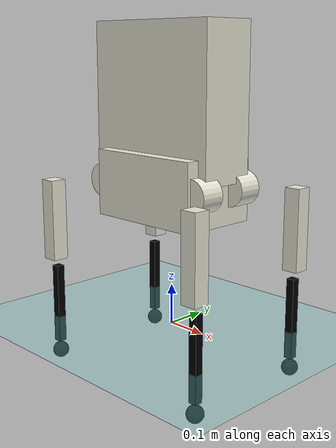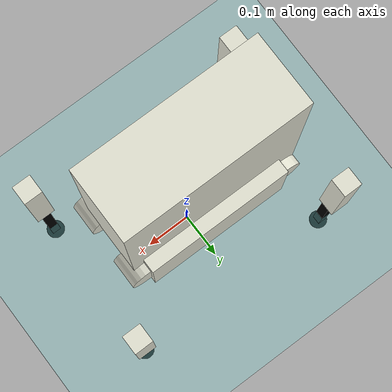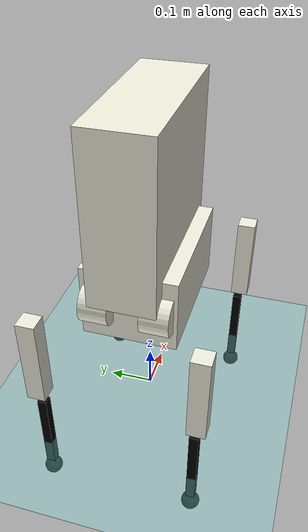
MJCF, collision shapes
<?xml version='1.0' encoding='utf-8'?>
<mujoco model="mybot_v3_with_arm">
    <compiler angle="radian" meshdir="../meshes/" autolimits="true" />
    <size njmax="500" nconmax="100" />
    <option gravity="0 0 -9.806" iterations="50" solver="Newton" timestep="0.002" />

    <default>
        <default class="dog_v2">
            <geom contype="1" conaffinity="1" friction="0.6 0.3 0.3" rgba="0.5 0.6 0.7 1" margin="0.001" group="0" />
            <joint armature="0.01" damping="2" frictionloss="0.2" />
            <motor ctrlrange="-33.5 33.5" ctrllimited="true" />

            <default class="abduction">
                <joint damping="1" />
            </default>
            <default class="thigh">
                <joint damping="2" />
            </default>
            <default class="calf">
                <joint damping="2" armature="0.0544" />
                <motor gear="2.3333" />
            </default>
        </default>

        <light castshadow="false" diffuse="1 1 1" />
        <camera fovy="60" />
    </default>

    <asset>
        <mesh name="body" file="body.STL" />
        <mesh name="FL_hip" file="FL_hip.STL" />
        <mesh name="FL_thigh" file="FL_thigh.STL" />
        <mesh name="FL_calf" file="FL_calf.STL" />
        <mesh name="FL_foot" file="FL_foot.STL" />
        <mesh name="FR_hip" file="FR_hip.STL" />
        <mesh name="FR_thigh" file="FR_thigh.STL" />
        <mesh name="FR_calf" file="FR_calf.STL" />
        <mesh name="FR_foot" file="FR_foot.STL" />
        <mesh name="RL_hip" file="RL_hip.STL" />
        <mesh name="RL_thigh" file="RL_thigh.STL" />
        <mesh name="RL_calf" file="RL_calf.STL" />
        <mesh name="RL_foot" file="RL_foot.STL" />
        <mesh name="RR_hip" file="RR_hip.STL" />
        <mesh name="RR_thigh" file="RR_thigh.STL" />
        <mesh name="RR_calf" file="RR_calf.STL" />
        <mesh name="RR_foot" file="RR_foot.STL" />
        <mesh name="arm_base_fix" file="arm_base_fix.STL" />

        <texture type="skybox" builtin="gradient" rgb1="1.0 1.0 1.0" rgb2="1.0 1.0 1.0" width="512" height="512" />
        <texture name="plane" type="2d" builtin="flat" rgb1="1 1 1" rgb2="1 1 1" width="512" height="512" mark="cross" markrgb="0 0 0" />
        <material name="plane" reflectance="0.0" texture="plane" texrepeat="3 3" texuniform="true" />
    </asset>

    <visual>
        <rgba com="0.502 1.0 0 0.5" contactforce="0.98 0.4 0.4 0.7" contactpoint="1.0 1.0 0.6 0.4" />
        <scale com="0.2" forcewidth="0.035" contactwidth="0.10" contactheight="0.04" />
    </visual>

    <worldbody>
        <light directional="true" diffuse=".8 .8 .8" pos="0 0 10" dir="0 0 -10" />
        <camera name="track" mode="trackcom" pos="0 -1.3 1.6" xyaxes="1 0 0 0 0.707 0.707" />
        <geom name="floor" type="plane" conaffinity="1" condim="3" contype="1" rgba="0.5 0.9 0.9 0.1" material="plane" pos="0 0 0" size="0 0 1" />

        <body name="body" pos="0 0 0.35" childclass="dog_v2">
            <inertial pos="0.00000000 0.00000000 0.00000000" mass="3.87237343" fullinertia="0.02571059 0.06723291 0.07677825 0.00000003 0.00005548 0.00000039" />
            <joint type="free" />
            <geom type="mesh" contype="0" conaffinity="0" group="1" rgba="0.847 0.847 0.847 1" mesh="body" />
            <geom size="0.15 0.1 0.08" pos="-0.0 0 -0.0" type="box" rgba="0.913 0.913 0.847 0" />
            <site name="imu" pos="0 0 0" />

            <body name="arm_base_fix" pos="0.060178 0.00017443 0.085879">
                <inertial pos="-0.06777427 0.00172378 0.11395569" mass="3.49951728" fullinertia="0.04270647 0.07424103 0.04229201 0.00109583 0.02637703 -0.00195862" />
                <geom type="mesh" contype="0" conaffinity="0" group="1" rgba="0.847 0.847 0.847 1" mesh="arm_base_fix" />
                <geom name="arm_base_fix_collision" size="0.18 0.07 0.18" pos="-0.0678 0.0017 0.1140" type="box" rgba="0.913 0.913 0.847 0" />
            </body>

            <body name="FL_hip" pos="0.15078 0.062035 0.0028793">
                <inertial pos="0.06912954 0.00308032 -0.00003864" mass="0.88715151" fullinertia="0.00069961 0.00185101 0.00156540 -0.00005524 0.00000161 -0.00000029" />
                <joint class="abduction" name="FL_hip_joint" pos="0 0 0" axis="1 0 0" range="-0.8 0.8" />
                <geom type="mesh" contype="0" conaffinity="0" group="1" rgba="1 1 1 1" mesh="FL_hip" />
                <geom size="0.04 0.03" euler="1.5707963 0 0" type="cylinder" rgba="0.913 0.913 0.847 0" />

                <body name="FL_thigh" pos="0.0889996956253644 0.0289500000000045 0">
                    <inertial pos="-0.02888348 0.05108903 -0.02037010" mass="1.44059854" fullinertia="0.00402900 0.00718366 0.00544974 0.00102313 -0.00259373 0.00071731" />
                    <joint class="thigh" name="FL_thigh_joint" pos="0 0 0" axis="0 1 0" range="-1.04 4.18" />
                    <geom type="mesh" contype="0" conaffinity="0" group="1" rgba="1 1 1 1" mesh="FL_thigh" />
                    <geom size="0.02 0.02 0.1" pos="0 0.08 -0.1" type="box" rgba="0.913 0.913 0.847 0" />

                    <body name="FL_calf" pos="0 0.075299999999995 -0.220000271728273">
                        <inertial pos="0.05156601 0.00018731 -0.04379412" mass="0.23708419" fullinertia="0.00070235 0.00207462 0.00144807 -0.00000272 0.00091520 0.00000190" />
                        <joint class="calf" name="FL_calf_joint" pos="0 0 0" axis="0 1 0" range="-2.69 -0.91" />
                        <geom type="mesh" contype="0" conaffinity="0" group="1" rgba="0.847 0.847 0.847 1" mesh="FL_calf" />
                        <geom size="0.01 0.01 0.1" pos="0 0 -0.1" type="box" rgba="0 0 0 0" />

                        <body name="FL_foot" pos="0 0.000400000000007244 -0.226044482407549">
                            <inertial pos="0.00000000 0.00000000 0.00000000" mass="0.03900000" fullinertia="0.00000624 0.00000624 0.00000624 0.00000000 0.00000000 0.00000000" />
                            <geom type="mesh" contype="0" conaffinity="0" group="1" rgba="0.298 0.298 0.298 1" mesh="FL_foot" />
                            <geom size="0.02" type="sphere" rgba="0 0 0 1" />
                        </body>
                    </body>
                </body>
            </body>

            <body name="FR_hip" pos="0.15078 -0.061965 0.0028793">
                <inertial pos="0.06924676 -0.00308032 -0.00003847" mass="0.88715151" fullinertia="0.00069961 0.00185513 0.00156952 0.00005408 -0.00000026 0.00000029" />
                <joint class="abduction" name="FR_hip_joint" pos="0 0 0" axis="1 0 0" range="-0.8 0.8" />
                <geom type="mesh" contype="0" conaffinity="0" group="1" rgba="1 1 1 1" mesh="FR_hip" />
                <geom size="0.04 0.03" euler="1.5707963 0 0" type="cylinder" rgba="0.913 0.913 0.847 0" />

                <body name="FR_thigh" pos="0.0889996956253649 -0.0289500000000027 0">
                    <inertial pos="-0.02893003 -0.05108904 -0.02031487" mass="1.44059854" fullinertia="0.00403040 0.00718302 0.00544770 -0.00102127 -0.00259435 -0.00071952" />
                    <joint class="thigh" name="FR_thigh_joint" pos="0 0 0" axis="0 1 0" range="-1.04 4.18" />
                    <geom type="mesh" contype="0" conaffinity="0" group="1" rgba="1 1 1 1" mesh="FR_thigh" />
                    <geom size="0.02 0.02 0.1" pos="0 -0.08 -0.1" type="box" rgba="0.913 0.913 0.847 0" />

                    <body name="FR_calf" pos="0 -0.0752999999999995 -0.220000271728275">
                        <inertial pos="0.05155465 -0.00019685 -0.04378873" mass="0.23708419" fullinertia="0.00070228 0.00207435 0.00144787 0.00000301 0.00091508 -0.00000213" />
                        <joint class="calf" name="FR_calf_joint" pos="0 0 0" axis="0 1 0" range="-2.69 -0.91" />
                        <geom type="mesh" contype="0" conaffinity="0" group="1" rgba="0.847 0.847 0.847 1" mesh="FR_calf" />
                        <geom size="0.01 0.01 0.1" pos="0 0 -0.1" type="box" rgba="0 0 0 0" />

                        <body name="FR_foot" pos="0 -0.000399999999994072 -0.226044482407548">
                            <inertial pos="0.00000000 0.00000000 0.00000000" mass="0.03900000" fullinertia="0.00000624 0.00000624 0.00000624 0.00000000 0.00000000 0.00000000" />
                            <geom type="mesh" contype="0" conaffinity="0" group="1" rgba="0.298 0.298 0.298 1" mesh="FR_foot" />
                            <geom size="0.02" type="sphere" rgba="0 0 0 1" />
                        </body>
                    </body>
                </body>
            </body>

            <body name="RL_hip" pos="-0.15042 0.062035 0.0028793">
                <inertial pos="-0.06912961 0.00308032 0.00003847" mass="0.88715151" fullinertia="0.00069961 0.00185101 0.00156540 0.00005524 0.00000161 0.00000029" />
                <joint class="abduction" name="RL_hip_joint" pos="0 0 0" axis="1 0 0" range="-0.8 0.8" />
                <geom type="mesh" contype="0" conaffinity="0" group="1" rgba="1 1 1 1" mesh="RL_hip" />
                <geom size="0.04 0.03" euler="1.5707963 0 0" type="cylinder" rgba="0.913 0.913 0.847 0" />

                <body name="RL_thigh" pos="-0.0889996956253643 0.0289499874999981 0">
                    <inertial pos="-0.02981118 0.05142476 -0.01901311" mass="1.45185979" fullinertia="0.00384286 0.00725341 0.00575250 0.00104947 -0.00254354 0.00066590" />
                    <joint class="thigh" name="RL_thigh_joint" pos="0 0 0" axis="0 1 0" range="-1.04 4.18" />
                    <geom type="mesh" contype="0" conaffinity="0" group="1" rgba="1 1 1 1" mesh="RL_thigh" />
                    <geom size="0.02 0.02 0.1" pos="0 0.08 -0.1" type="box" rgba="0.913 0.913 0.847 0" />

                    <body name="RL_calf" pos="0 0.0752999999999953 -0.220000271728273">
                        <inertial pos="0.05423569 0.00000883 -0.03966053" mass="0.23880158" fullinertia="0.00057526 0.00208160 0.00158150 0.00000037 0.00085435 -0.00000027" />
                        <joint class="calf" name="RL_calf_joint" pos="0 0 0" axis="0 1 0" range="-2.69 -0.91" />
                        <geom type="mesh" contype="0" conaffinity="0" group="1" rgba="0.847 0.847 0.847 1" mesh="RL_calf" />
                        <geom size="0.01 0.01 0.1" pos="0 0 -0.1" type="box" rgba="0 0 0 0" />

                        <body name="RL_foot" pos="0 0 -0.226044482410381">
                            <inertial pos="0.00000000 0.00000000 0.00000000" mass="0.03900000" fullinertia="0.00000624 0.00000624 0.00000624 0.00000000 0.00000000 0.00000000" />
                            <geom type="mesh" contype="0" conaffinity="0" group="1" rgba="0.298 0.298 0.298 1" mesh="RL_foot" />
                            <geom size="0.02" type="sphere" rgba="0 0 0 1" />
                        </body>
                    </body>
                </body>
            </body>

            <body name="RR_hip" pos="-0.150422440000001 -0.0619648146458117 0.00287929128020871">
                <inertial pos="-0.06924676 -0.00308032 0.00003847" mass="0.88715151" fullinertia="0.00069961 0.00185513 0.00156952 -0.00005408 -0.00000026 -0.00000029" />
                <joint class="abduction" name="RR_hip_joint" pos="0 0 0" axis="1 0 0" range="-0.8 0.8" />
                <geom type="mesh" contype="0" conaffinity="0" group="1" rgba="0.847 0.847 0.847 1" mesh="RR_hip" />
                <geom size="0.04 0.03" euler="1.5707963 0 0" type="cylinder" rgba="0.913 0.913 0.847 0" />

                <body name="RR_thigh" pos="-0.0889996956253639 -0.0289499875000004 0">
                    <inertial pos="-0.02978034 -0.05141831 -0.01902502" mass="1.45068546" fullinertia="0.00384080 0.00724711 0.00574630 -0.00104560 -0.00254723 -0.00067018" />
                    <joint class="thigh" name="RR_thigh_joint" pos="0 0 0" axis="0 1 0" range="-1.04 4.18" />
                    <geom type="mesh" contype="0" conaffinity="0" group="1" rgba="1 1 1 1" mesh="RR_thigh" />
                    <geom size="0.02 0.02 0.1" pos="0 -0.08 -0.1" type="box" rgba="0.913 0.913 0.847 0" />

                    <body name="RR_calf" pos="0 -0.0752999999999974 -0.220000271728273">
                        <inertial pos="0.05424733 -0.00001831 -0.03966504" mass="0.23880158" fullinertia="0.00057532 0.00208188 0.00158173 -0.00000006 0.00085447 0.00000006" />
                        <joint class="calf" name="RR_calf_joint" pos="0 0 0" axis="0 1 0" range="-2.69 -0.91" />
                        <geom type="mesh" contype="0" conaffinity="0" group="1" rgba="0.847 0.847 0.847 1" mesh="RR_calf" />
                        <geom size="0.01 0.01 0.1" pos="0 0 -0.1" type="box" rgba="0 0 0 0" />

                        <body name="RR_foot" pos="0 0 -0.226044482410382">
                            <inertial pos="0.00000000 0.00000000 0.00000000" mass="0.03900000" fullinertia="0.00000624 0.00000624 0.00000624 0.00000000 0.00000000 0.00000000" />
                            <geom type="mesh" contype="0" conaffinity="0" group="1" rgba="0.298 0.298 0.298 1" mesh="RR_foot" />
                            <geom size="0.02" type="sphere" rgba="0 0 0 1" />
                        </body>
                    </body>
                </body>
            </body>
        </body>
    </worldbody>

    <actuator>
        <motor class="abduction" name="FL_hip" gear="1" joint="FL_hip_joint" />
        <motor class="thigh" name="FL_thigh" gear="1" joint="FL_thigh_joint" />
        <motor class="calf" name="FL_calf" joint="FL_calf_joint" />
        <motor class="abduction" name="FR_hip" gear="1" joint="FR_hip_joint" />
        <motor class="thigh" name="FR_thigh" gear="1" joint="FR_thigh_joint" />
        <motor class="calf" name="FR_calf" joint="FR_calf_joint" />
        <motor class="abduction" name="RL_hip" gear="1" joint="RL_hip_joint" />
        <motor class="thigh" name="RL_thigh" gear="1" joint="RL_thigh_joint" />
        <motor class="calf" name="RL_calf" joint="RL_calf_joint" />
        <motor class="abduction" name="RR_hip" gear="1" joint="RR_hip_joint" />
        <motor class="thigh" name="RR_thigh" gear="1" joint="RR_thigh_joint" />
        <motor class="calf" name="RR_calf" joint="RR_calf_joint" />
    </actuator>

    <sensor>
        <jointpos name="FL_hip_pos" joint="FL_hip_joint" />
        <jointpos name="FL_thigh_pos" joint="FL_thigh_joint" />
        <jointpos name="FL_calf_pos" joint="FL_calf_joint" />
        <jointpos name="FR_hip_pos" joint="FR_hip_joint" />
        <jointpos name="FR_thigh_pos" joint="FR_thigh_joint" />
        <jointpos name="FR_calf_pos" joint="FR_calf_joint" />
        <jointpos name="RL_hip_pos" joint="RL_hip_joint" />
        <jointpos name="RL_thigh_pos" joint="RL_thigh_joint" />
        <jointpos name="RL_calf_pos" joint="RL_calf_joint" />
        <jointpos name="RR_hip_pos" joint="RR_hip_joint" />
        <jointpos name="RR_thigh_pos" joint="RR_thigh_joint" />
        <jointpos name="RR_calf_pos" joint="RR_calf_joint" />

        <jointvel name="FL_hip_vel" joint="FL_hip_joint" />
        <jointvel name="FL_thigh_vel" joint="FL_thigh_joint" />
        <jointvel name="FL_calf_vel" joint="FL_calf_joint" />
        <jointvel name="FR_hip_vel" joint="FR_hip_joint" />
        <jointvel name="FR_thigh_vel" joint="FR_thigh_joint" />
        <jointvel name="FR_calf_vel" joint="FR_calf_joint" />
        <jointvel name="RL_hip_vel" joint="RL_hip_joint" />
        <jointvel name="RL_thigh_vel" joint="RL_thigh_joint" />
        <jointvel name="RL_calf_vel" joint="RL_calf_joint" />
        <jointvel name="RR_hip_vel" joint="RR_hip_joint" />
        <jointvel name="RR_thigh_vel" joint="RR_thigh_joint" />
        <jointvel name="RR_calf_vel" joint="RR_calf_joint" />

        <accelerometer name="Body_Acc" site="imu" />
        <gyro name="Body_Gyro" site="imu" />
        <framepos name="Body_Pos" objtype="site" objname="imu" />
        <framequat name="Body_Quat" objtype="site" objname="imu" />
    </sensor>
</mujoco>
